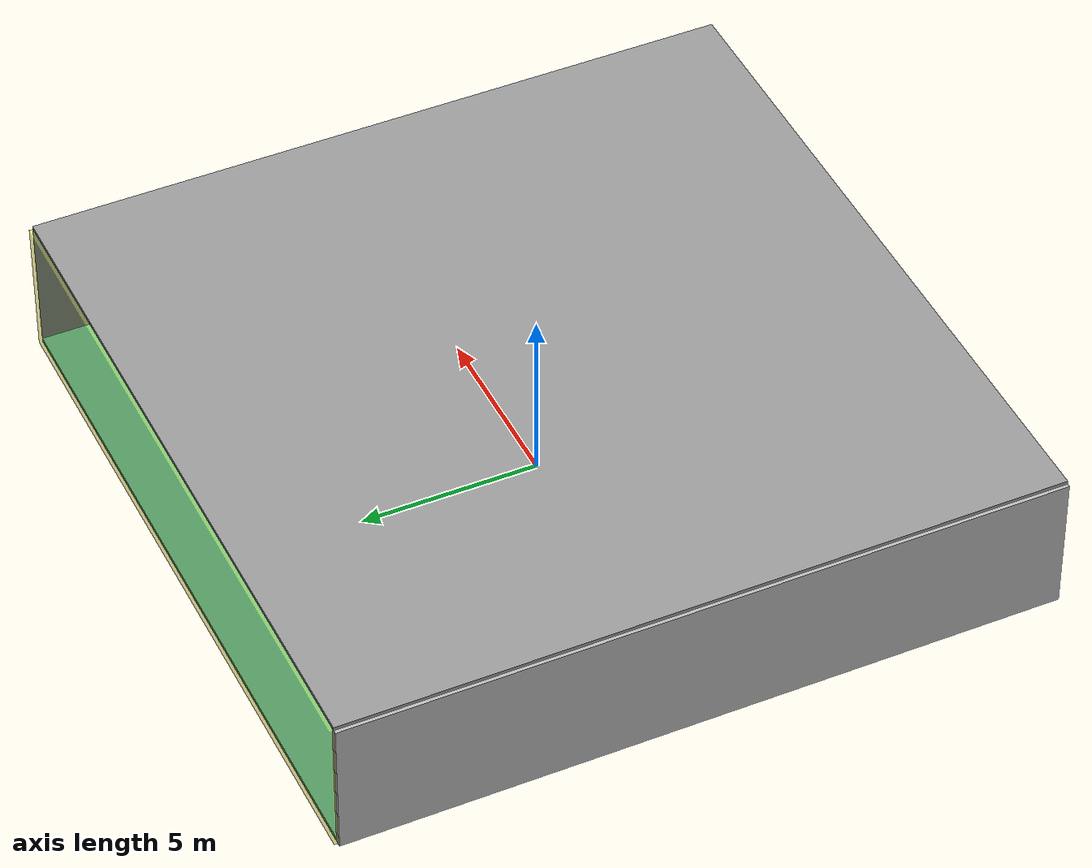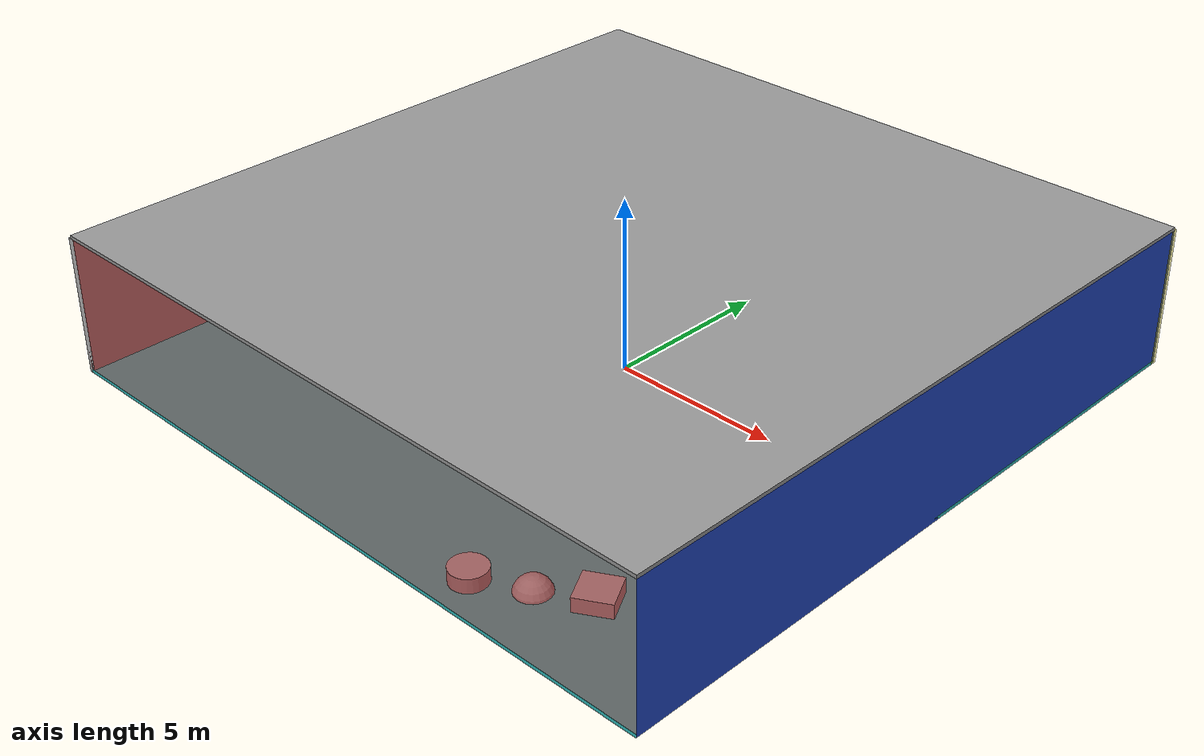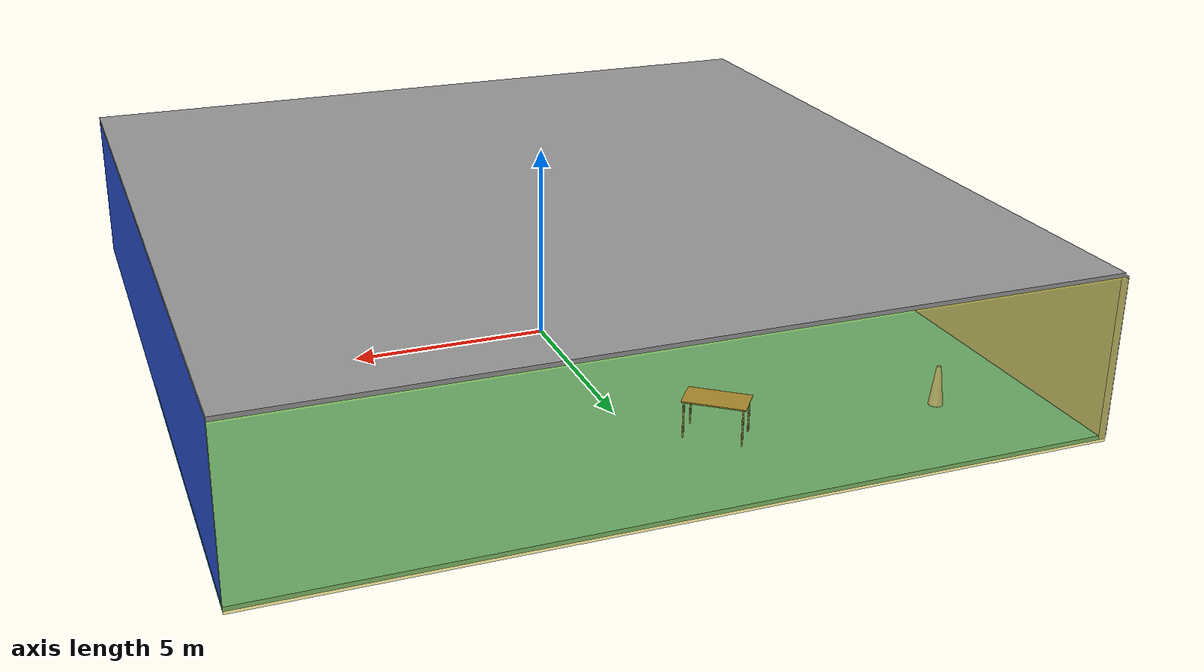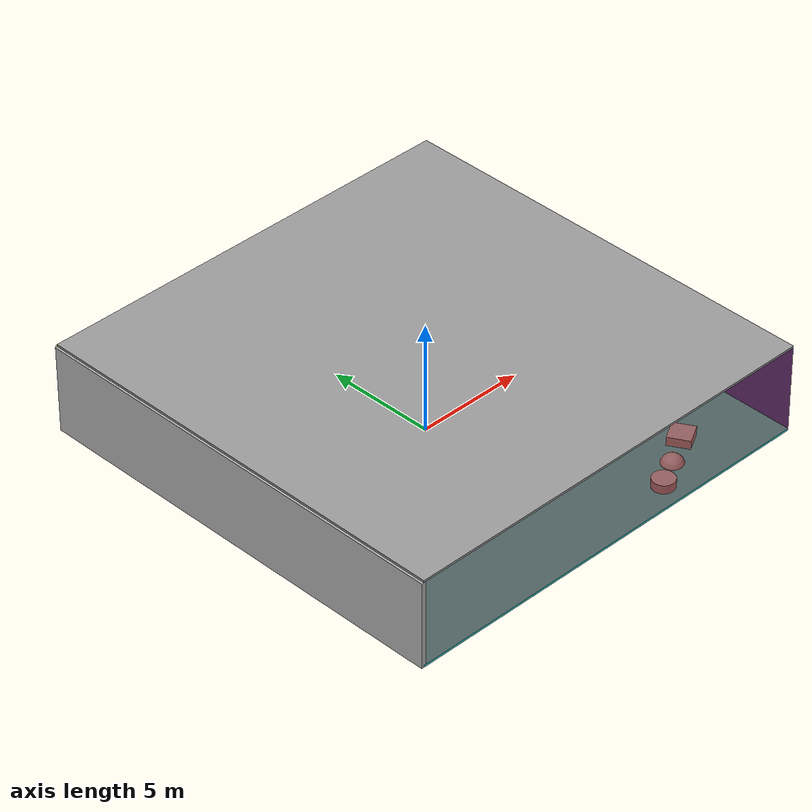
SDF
<sdf version="1.4">
 <world name="default">
  <physics type="ode">
   <max_step_size>0.001</max_step_size>
   <real_time_factor>1</real_time_factor>
   <real_time_update_rate>1000</real_time_update_rate>
   <gravity>0 0 -9.8</gravity>
  </physics>
  <scene><ambient>0.4 0.4 0.4 1</ambient><background>0.7 0.7 0.7 1</background><shadows>1</shadows></scene>
  <model name="Surrounding">
   <static>1</static>
   <link name="Ceiling">
    <collision name="Ceiling_Collision"><geometry><box><size>20 20 0.1</size></box></geometry></collision>
    <visual name="Ceiling_Visual">
     <geometry><box><size>20 20 0.1</size></box></geometry>
     <material>
      <script><uri>file://media/materials/scripts/gazebo.material</uri><name>Gazebo/GreyGradientSky</name></script>
     </material>
    </visual>
    <pose>0 0 4.05 0 0 0</pose>
   </link>
   <link name="Wall_South">
    <collision name="Wall_South_Collision">
     <geometry><box><size>20 0 4</size></box></geometry>
     <pose>0 0 2 0 -0 0</pose>
    </collision>
    <visual name="Wall_South_Visual">
     <pose>0 0 2 0 -0 0</pose>
     <geometry><box><size>20 0 4</size></box></geometry>
     <material>
      <script><uri>file://media/materials/scripts/gazebo.material</uri><name>Gazebo/RedTransparent</name></script>
     </material>
    </visual>
    <velocity_decay><linear>0</linear><angular>0</angular></velocity_decay>
    <pose>0 -10 0 0 -0 0</pose>
   </link>
   <link name="Wall_East">
    <collision name="Wall_21_Collision">
     <geometry><box><size>20 0 4</size></box></geometry>
     <pose>0 0 2 0 -0 0</pose>
    </collision>
    <visual name="Wall_21_Visual">
     <pose>0 0 2 0 -0 0</pose>
     <geometry><box><size>20 0 4</size></box></geometry>
     <material>
      <script><uri>file://media/materials/scripts/gazebo.material</uri><name>Gazebo/Blue</name></script>
     </material>
    </visual>
    <velocity_decay><linear>0</linear><angular>0</angular></velocity_decay>
    <pose>10 0 0 0 -0 1.5708</pose>
   </link>
   <link name="Wall_North">
    <collision name="Wall_22_Collision">
     <geometry><box><size>20 0.2 4</size></box></geometry>
     <pose>0 0 2 0 -0 0</pose>
    </collision>
    <visual name="Wall_22_Visual">
     <pose>0 0 2 0 -0 0</pose>
     <geometry><box><size>20 0.2 4</size></box></geometry>
     <material>
      <script>
       <uri>file://media/materials/scripts/gazebo.material</uri>
       <name>Gazebo/YellowTransparent</name>
      </script>
     </material>
    </visual>
    <velocity_decay><linear>0</linear><angular>0</angular></velocity_decay>
    <pose>0 10 0 0 -0 0</pose>
   </link>
   <link name="Wall_West">
    <collision name="Wall_23_Collision">
     <geometry><box><size>20 0.2 4</size></box></geometry>
     <pose>0 0 2 0 -0 0</pose>
    </collision>
    <visual name="Wall_23_Visual">
     <pose>0 0 2 0 -0 0</pose>
     <geometry><box><size>20 0.2 4</size></box></geometry>
     <material>
      <script><uri>file://media/materials/scripts/gazebo.material</uri><name>Gazebo/LightOn</name></script>
     </material>
    </visual>
    <velocity_decay><linear>0</linear><angular>0</angular></velocity_decay>
    <pose>-10 0 0 0 0 -1.5708</pose>
   </link>
   <link name="Ground_link">
    <collision name="collision">
     <pose>0 0 .05 0 -0 0</pose>
     <geometry><box><size>20 20 0.1</size></box></geometry>
    </collision>
    <visual name="visual">
     <pose>0 0 .05 0 -0 0</pose>
     <geometry><box><size>20 20 0.1</size></box></geometry>
     <material>
      <script><uri>file://media/materials/scripts/gazebo.material</uri><name>Gazebo/Turquoise</name></script>
     </material>
    </visual>
   </link>
   <static>1</static>
  </model>
  <spherical_coordinates>
   <surface_model>EARTH_WGS84</surface_model>
   <latitude_deg>0</latitude_deg>
   <longitude_deg>0</longitude_deg>
   <elevation>0</elevation>
   <heading_deg>0</heading_deg>
  </spherical_coordinates>
  <light name="lightball_0" type="diffuse">
   <diffuse>0.8 0.8 0.8 1</diffuse>
   <specular>0.2 0.2 0.2 1</specular>
   <attenuation>
    <range>100</range>
    <constant>0.7</constant>
    <linear>0.01</linear>
    <quadratic>0.001</quadratic>
   </attenuation>
   <direction>-0.5 0.1 -0.9</direction>
   <pose>-9.05358648358 -6.94592531744 2.4880876087 0 0 0</pose>
  </light>
  <light name="lightball_1" type="diffuse">
   <diffuse>0.8 0.8 0.8 1</diffuse>
   <specular>0.2 0.2 0.2 1</specular>
   <attenuation>
    <range>100</range>
    <constant>0.7</constant>
    <linear>0.01</linear>
    <quadratic>0.001</quadratic>
   </attenuation>
   <direction>-0.5 0.1 -0.9</direction>
   <pose>1.90710609258 8.09148609042 2.77665083031 0 0 0</pose>
  </light>
  <light name="lightball_2" type="diffuse">
   <diffuse>0.8 0.8 0.8 1</diffuse>
   <specular>0.2 0.2 0.2 1</specular>
   <attenuation>
    <range>100</range>
    <constant>0.7</constant>
    <linear>0.01</linear>
    <quadratic>0.001</quadratic>
   </attenuation>
   <direction>-0.5 0.1 -0.9</direction>
   <pose>9.20284734037 -3.69934914663 3.350925579 0 0 0</pose>
  </light>
  <light name="lightball_3" type="diffuse">
   <diffuse>0.8 0.8 0.8 1</diffuse>
   <specular>0.2 0.2 0.2 1</specular>
   <attenuation>
    <range>100</range>
    <constant>0.7</constant>
    <linear>0.01</linear>
    <quadratic>0.001</quadratic>
   </attenuation>
   <direction>-0.5 0.1 -0.9</direction>
   <pose>-9.25817475543 7.42973864919 0.863065872409 0 0 0</pose>
  </light>
  <light name="lightball_4" type="diffuse">
   <diffuse>0.8 0.8 0.8 1</diffuse>
   <specular>0.2 0.2 0.2 1</specular>
   <attenuation>
    <range>100</range>
    <constant>0.7</constant>
    <linear>0.01</linear>
    <quadratic>0.001</quadratic>
   </attenuation>
   <direction>-0.5 0.1 -0.9</direction>
   <pose>-8.12753449039 -3.78773615892 3.04853703879 0 0 0</pose>
  </light>
  <light name="lightball_5" type="diffuse">
   <diffuse>0.8 0.8 0.8 1</diffuse>
   <specular>0.2 0.2 0.2 1</specular>
   <attenuation>
    <range>100</range>
    <constant>0.7</constant>
    <linear>0.01</linear>
    <quadratic>0.001</quadratic>
   </attenuation>
   <direction>-0.5 0.1 -0.9</direction>
   <pose>-3.32447945984 4.05309439962 3.24595420096 0 0 0</pose>
  </light>
  <light name="lightball_6" type="diffuse">
   <diffuse>0.8 0.8 0.8 1</diffuse>
   <specular>0.2 0.2 0.2 1</specular>
   <attenuation>
    <range>100</range>
    <constant>0.7</constant>
    <linear>0.01</linear>
    <quadratic>0.001</quadratic>
   </attenuation>
   <direction>-0.5 0.1 -0.9</direction>
   <pose>-6.3495100229 -2.23303574225 2.74345137929 0 0 0</pose>
  </light>
  <light name="lightball_7" type="diffuse">
   <diffuse>0.8 0.8 0.8 1</diffuse>
   <specular>0.2 0.2 0.2 1</specular>
   <attenuation>
    <range>100</range>
    <constant>0.7</constant>
    <linear>0.01</linear>
    <quadratic>0.001</quadratic>
   </attenuation>
   <direction>-0.5 0.1 -0.9</direction>
   <pose>-5.88085278885 3.75539351906 2.40267714362 0 0 0</pose>
  </light>
  <light name="lightball_8" type="diffuse">
   <diffuse>0.8 0.8 0.8 1</diffuse>
   <specular>0.2 0.2 0.2 1</specular>
   <attenuation>
    <range>100</range>
    <constant>0.7</constant>
    <linear>0.01</linear>
    <quadratic>0.001</quadratic>
   </attenuation>
   <direction>-0.5 0.1 -0.9</direction>
   <pose>-6.14920807846 7.48535256737 2.02885289907 0 0 0</pose>
  </light>
  <include>
   <uri>model://construction_cone</uri>
   <pose>-7.3017090057 7.34091275563 0 0 0 2.32734471408</pose>
  </include>
  <include><uri>model://table</uri><pose>-1.71965145616 6.93616803694 0 0 0 2.48470575689</pose></include>
  <include><uri>model://cabinet</uri><pose>2.05102944183 -1.86668566758 0 0 0 2.94916255773</pose></include>
  <include>
   <uri>model://textured_shapes</uri>
   <pose>5.19972451535 -8.28713556737 0 0 0 2.08240798262</pose>
  </include>
  <include>
   <uri>model://textured_shapes</uri>
   <pose>3.94736649774 -1.52102114406 0 0 0 0.69855255103</pose>
  </include>
  <include><uri>model://table</uri><pose>3.82539969694 1.78949126016 0 0 0 0.0669464545417</pose></include>
 </world>
</sdf>

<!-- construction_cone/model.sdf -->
<sdf version="1.5">
  <model name="Construction Cone">
    <link name="link">
      <collision name="collision">
        <geometry>
          <mesh>
            <scale>10 10 10</scale>
            <uri>file://isr-testbed/construction_cone/meshes/construction_cone.dae</uri>
          </mesh>
        </geometry>
      </collision>
      <visual name="visual">
        <geometry>
          <mesh>
            <scale>10 10 10</scale>
            <uri>file://isr-testbed/construction_cone/meshes/construction_cone.dae</uri>
          </mesh>
        </geometry>
      </visual>
    </link>
  </model>
</sdf>

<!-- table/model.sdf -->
<sdf version="1.5">
  <model name="table">
    <static>true</static>
    <link name="link">
      <collision name="surface">
        <pose>0 0 1.0 0 0 0</pose>
        <geometry>
          <box>
            <size>1.5 0.8 0.03</size>
          </box>
        </geometry>
        <surface>
          <friction>
            <ode>
              <mu>0.6</mu>
              <mu2>0.6</mu2>
            </ode>
          </friction>
        </surface>
      </collision>
      <visual name="visual1">
        <pose>0 0 1.0 0 0 0</pose>
        <geometry>
          <box>
            <size>1.5 0.8 0.03</size>
          </box>
        </geometry>
        <material>
          <script>
            <uri>model://media/materials/scripts/gazebo.material</uri>
            <name>Gazebo/Wood</name>
          </script>
        </material>
      </visual>
      <collision name="front_left_leg">
        <pose>0.68 0.38 0.5 0 0 0</pose>
        <geometry>
          <cylinder>
            <radius>0.02</radius>
            <length>1.0</length>
          </cylinder>
        </geometry>
      </collision>
      <visual name="front_left_leg">
        <pose>0.68 0.38 0.5 0 0 0</pose>
        <geometry>
          <cylinder>
            <radius>0.02</radius>
            <length>1.0</length>
          </cylinder>
        </geometry>
        <material>
          <script>
            <uri>model://media/materials/scripts/gazebo.material</uri>
            <name>Gazebo/Grey</name>
          </script>
        </material>
      </visual>
      <collision name="front_right_leg">
        <pose>0.68 -0.38 0.5 0 0 0</pose>
        <geometry>
          <cylinder>
            <radius>0.02</radius>
            <length>1.0</length>
          </cylinder>
        </geometry>
      </collision>
      <visual name="front_right_leg">
        <pose>0.68 -0.38 0.5 0 0 0</pose>
        <geometry>
          <cylinder>
            <radius>0.02</radius>
            <length>1.0</length>
          </cylinder>
        </geometry>
        <material>
          <script>
            <uri>model://media/materials/scripts/gazebo.material</uri>
            <name>Gazebo/Grey</name>
          </script>
        </material>
      </visual>
      <collision name="back_right_leg">
        <pose>-0.68 -0.38 0.5 0 0 0</pose>
        <geometry>
          <cylinder>
            <radius>0.02</radius>
            <length>1.0</length>
          </cylinder>
        </geometry>
      </collision>
      <visual name="back_right_leg">
        <pose>-0.68 -0.38 0.5 0 0 0</pose>
        <geometry>
          <cylinder>
            <radius>0.02</radius>
            <length>1.0</length>
          </cylinder>
        </geometry>
        <material>
          <script>
            <uri>model://media/materials/scripts/gazebo.material</uri>
            <name>Gazebo/Grey</name>
          </script>
        </material>
      </visual>
      <collision name="back_left_leg">
        <pose>-0.68 0.38 0.5 0 0 0</pose>
        <geometry>
          <cylinder>
            <radius>0.02</radius>
            <length>1.0</length>
          </cylinder>
        </geometry>
      </collision>
      <visual name="back_left_leg">
        <pose>-0.68 0.38 0.5 0 0 0</pose>
        <geometry>
          <cylinder>
            <radius>0.02</radius>
            <length>1.0</length>
          </cylinder>
        </geometry>
        <material>
          <script>
            <uri>model://media/materials/scripts/gazebo.material</uri>
            <name>Gazebo/Grey</name>
          </script>
        </material>
      </visual>
    </link>
  </model>
</sdf>

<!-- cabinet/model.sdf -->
<sdf version="1.5">
  <model name="cabinet">
    <static>true</static>
    <link name="cabinet_bottom_plate">
      <inertial>
        <pose>0 0 -1 0 0 0</pose>
        <inertia>
          <ixx>2.050000</ixx>
          <ixy>0</ixy>
          <ixz>0</ixz>
          <iyy>2.050000</iyy>
          <iyz>0</iyz>
          <izz>2.050000</izz>
        </inertia>
        <mass>25.000000</mass>
      </inertial>
      <collision name="cabinet_bottom_plate_geom">
        <pose>0 0 0.010000 0 0 0</pose>
        <geometry>
          <box>
            <size>0.450000 0.450000 0.020000</size>
          </box>
        </geometry>
      </collision>
      <visual name="cabinet_bottom_plate_geom_visual">
        <pose>0 0 0.010000 0 0 0</pose>
        <geometry>
          <box>
            <size>0.450000 0.450000 0.020000</size>
          </box>
        </geometry>
        <material>
          <script>
            <uri>model://media/materials/scripts/gazebo.material</uri>
            <name>Gazebo/Wood</name>
          </script>
        </material>
      </visual>
      <collision name="cabinet_bottom_plate_geom_cabinet_back_plate">
        <pose>0.235000 0 0.510000 0 0 0</pose>
        <geometry>
          <box>
            <size>0.020000 0.450000 1.020000</size>
          </box>
        </geometry>
      </collision>
      <visual name="cabinet_bottom_plate_geom_cabinet_back_plate_visual">
        <pose>0.235000 0 0.510000 0 0 0</pose>
        <geometry>
          <box>
            <size>0.020000 0.450000 1.020000</size>
          </box>
        </geometry>
        <material>
          <script>
            <uri>model://media/materials/scripts/gazebo.material</uri>
            <name>Gazebo/Wood</name>
          </script>
        </material>
      </visual>
      <collision name="cabinet_bottom_plate_geom_cabinet_left_plate">
        <pose>0 0.235000 0.510000 0 0 0</pose>
        <geometry>
          <box>
            <size>0.450000 0.020000 1.020000</size>
          </box>
        </geometry>
      </collision>
      <visual name="cabinet_bottom_plate_geom_cabinet_left_plate_visual">
        <pose>0 0.235000 0.510000 0 0 0</pose>
        <geometry>
          <box>
            <size>0.450000 0.020000 1.020000</size>
          </box>
        </geometry>
        <material>
          <script>
            <uri>model://media/materials/scripts/gazebo.material</uri>
            <name>Gazebo/Wood</name>
          </script>
        </material>
      </visual>
      <collision name="cabinet_bottom_plate_geom_cabinet_middle_plate">
        <pose>0 0 0.510000 0 0 0</pose>
        <geometry>
          <box>
            <size>0.450000 0.450000 0.020000</size>
          </box>
        </geometry>
      </collision>
      <visual name="cabinet_bottom_plate_geom_cabinet_middle_plate_visual">
        <pose>0 0 0.510000 0 0 0</pose>
        <geometry>
          <box>
            <size>0.450000 0.450000 0.020000</size>
          </box>
        </geometry>
        <material>
          <script>
            <uri>model://media/materials/scripts/gazebo.material</uri>
            <name>Gazebo/Wood</name>
          </script>
        </material>
      </visual>
      <collision name="cabinet_bottom_plate_geom_cabinet_right_plate">
        <pose>0 -0.235000 0.510000 0 0 0</pose>
        <geometry>
          <box>
            <size>0.450000 0.020000 1.020000</size>
          </box>
        </geometry>
      </collision>
      <visual name="cabinet_bottom_plate_geom_cabinet_right_plate_visual">
        <pose>0 -0.235000 0.510000 0 0 0</pose>
        <geometry>
          <box>
            <size>0.450000 0.020000 1.020000</size>
          </box>
        </geometry>
        <material>
          <script>
            <uri>model://media/materials/scripts/gazebo.material</uri>
            <name>Gazebo/Wood</name>
          </script>
        </material>
      </visual>
      <collision name="cabinet_bottom_plate_geom_cabinet_top_plate">
        <pose>0 0 1.010000 0 0 0</pose>
        <geometry>
          <box>
            <size>0.450000 0.450000 0.020000</size>
          </box>
        </geometry>
      </collision>
      <visual name="cabinet_bottom_plate_geom_cabinet_top_plate_visual">
        <pose>0 0 1.010000 0 0 0</pose>
        <geometry>
          <box>
            <size>0.450000 0.450000 0.020000</size>
          </box>
        </geometry>
        <material>
          <script>
            <uri>model://media/materials/scripts/gazebo.material</uri>
            <name>Gazebo/Wood</name>
          </script>
        </material>
      </visual>
    </link>
  </model>
</sdf>

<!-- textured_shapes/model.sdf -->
<sdf version="1.6">
  <model name="textured_shapes">
    <pose>0 0 0.5 0 0 0</pose>
    <link name="box">
      <pose>0 -1.5 0 0 0 0</pose>
      <collision name="collision">
        <geometry>
          <box>
            <size>1 1 1</size>
          </box>
        </geometry>
      </collision>
      <visual name="visual">
        <geometry>
          <box>
            <size>1 1 1</size>
          </box>
        </geometry>
        <material>
          <script>
            <uri>model://../model_source/models/textured_shapes/materials/scripts</uri>
            <uri>model://../model_source/models/textured_shapes/materials/textures</uri>
            <name>TexturedShape/Squares</name>
          </script>
        </material>
      </visual>
    </link>
    <link name="sphere">
      <collision name="collision">
        <geometry>
          <sphere>
            <radius>0.5</radius>
          </sphere>
        </geometry>
      </collision>
      <visual name="visual">
        <geometry>
          <sphere>
            <radius>0.5</radius>
          </sphere>
        </geometry>
        <material>
          <script>
            <uri>model://../model_source/models/textured_shapes/materials/scripts</uri>
            <uri>model://../model_source/models/textured_shapes/materials/textures</uri>
            <name>TexturedShape/Squares</name>
          </script>
        </material>
      </visual>
    </link>
    <link name="cylinder">
      <pose>0 1.5 0 0 0 0</pose>
      <collision name="collision">
        <geometry>
          <cylinder>
            <radius>0.5</radius>
            <length>1</length>
          </cylinder>
        </geometry>
      </collision>
      <visual name="visual">
        <geometry>
          <cylinder>
            <radius>0.5</radius>
            <length>1</length>
          </cylinder>
        </geometry>
        <material>
          <script>
            <uri>model://../model_source/models/textured_shapes/materials/scripts</uri>
            <uri>model://../model_source/models/textured_shapes/materials/textures</uri>
            <name>TexturedShape/Squares</name>
          </script>
        </material>
      </visual>
    </link>
  </model>
</sdf>
